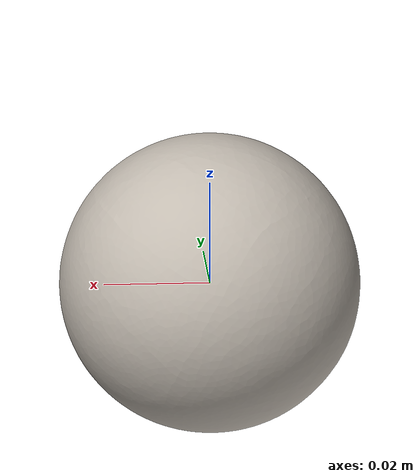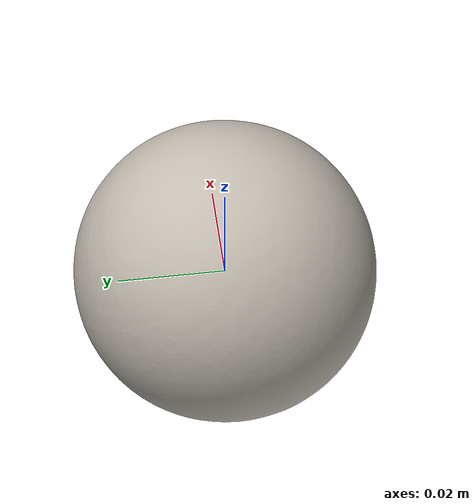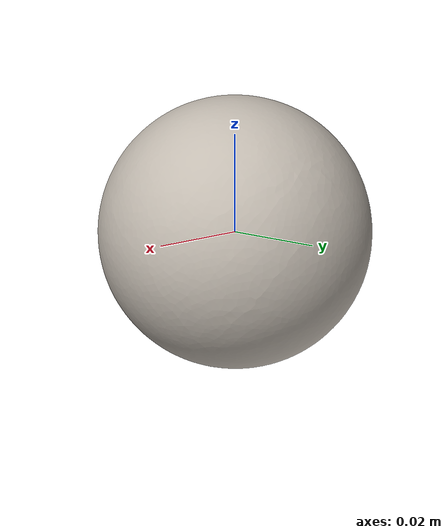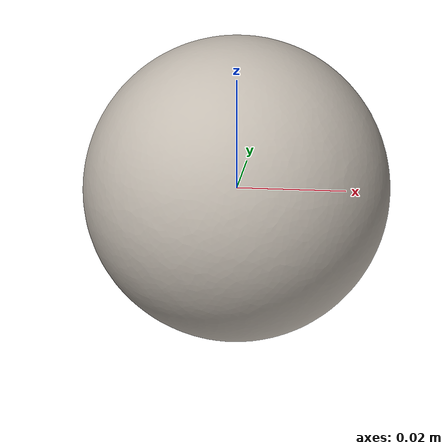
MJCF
<mujoco model="racquetball">
  <compiler angle="radian" />

  <asset>
    <mesh name="racquetball_visual_mesh" file="racquetball/textured.obj" />
    <mesh name="racquetball_collision_mesh_0" file="racquetball/textured_coacd_0.stl" />
    <texture name="racquetball_texture" type="2d" file="racquetball/texture_map.png" />
    <material name="racquetball_material" texture="racquetball_texture" />
  </asset>

  <worldbody>
    <body name="racquetball" pos="0 0 0" euler="0 0 0">
      <freejoint name="racquetball_joint" />
      <geom name="racquetball_visual_geom" type="mesh" mesh="racquetball_visual_mesh" material="racquetball_material" pos="0.0 -0.0 0.0" euler="0 0 0" contype="0" conaffinity="0" group="0" />
      <geom name="racquetball_collision_geom_0" type="mesh" mesh="racquetball_collision_mesh_0" pos="0.0 -0.0 0.0" euler="0 0 0" contype="1" conaffinity="1" group="3" />
      <inertial pos="0 0 0" euler="0 0 0" mass="0.041" diaginertia="0.001 0.001 0.001" />
    </body>
  </worldbody>
</mujoco>
